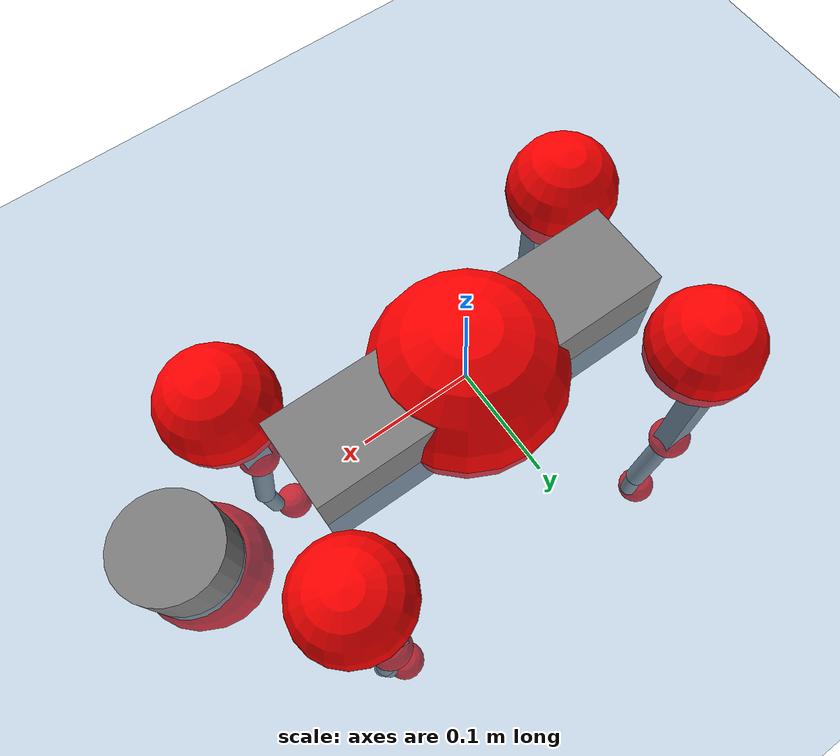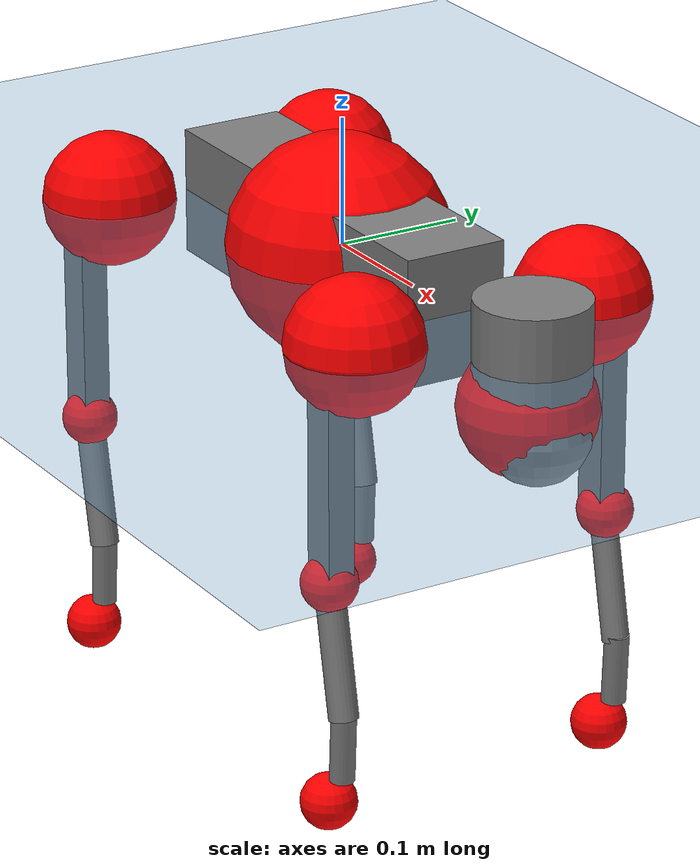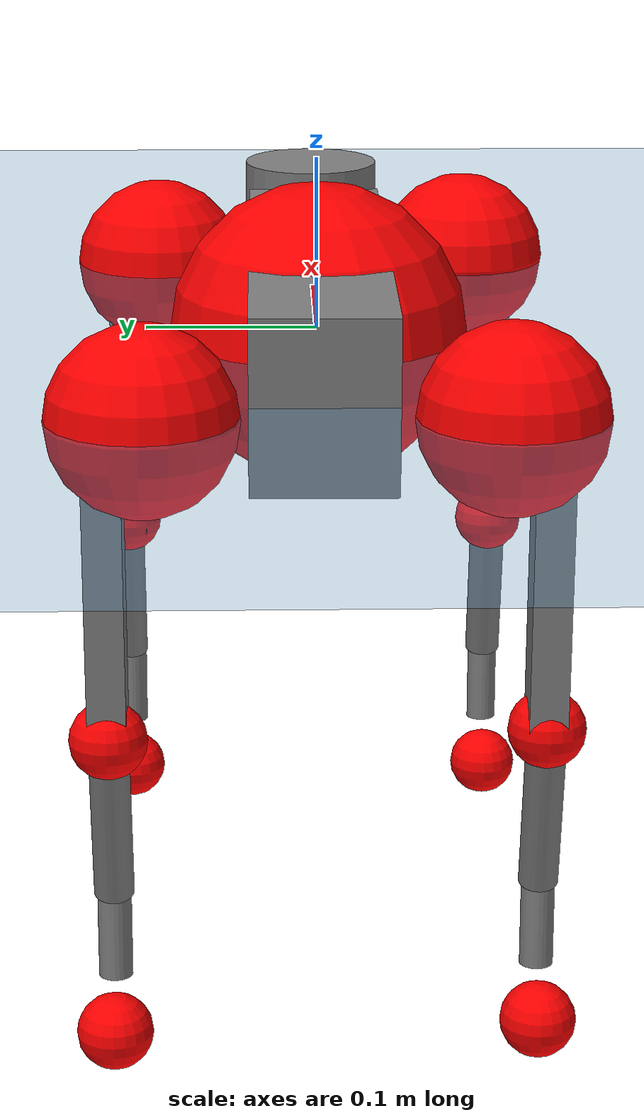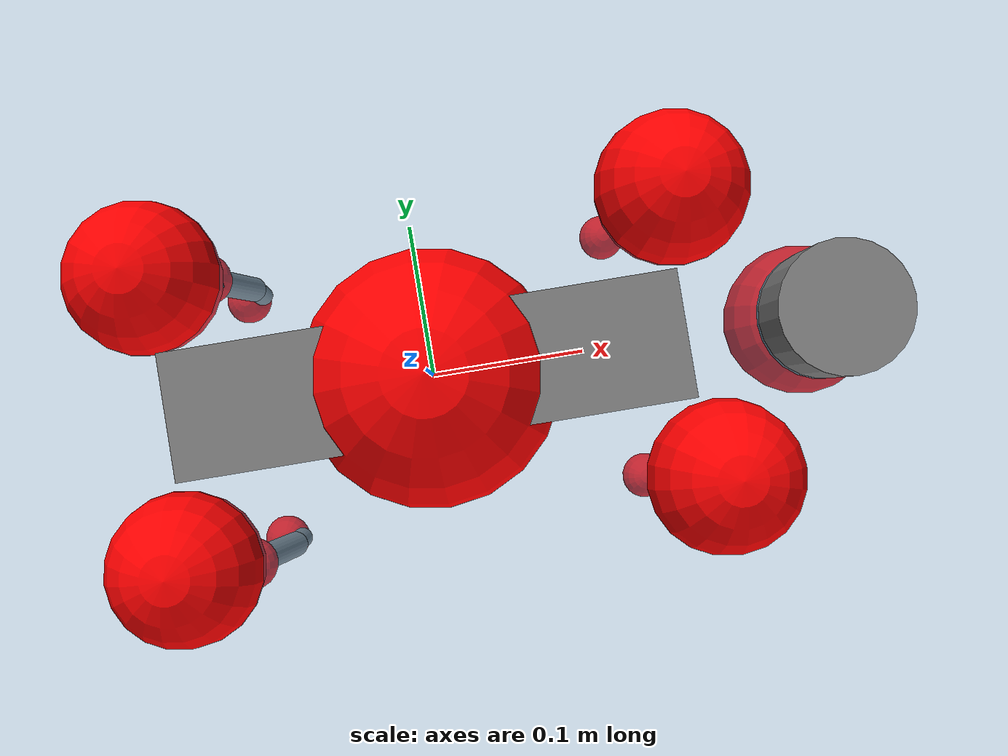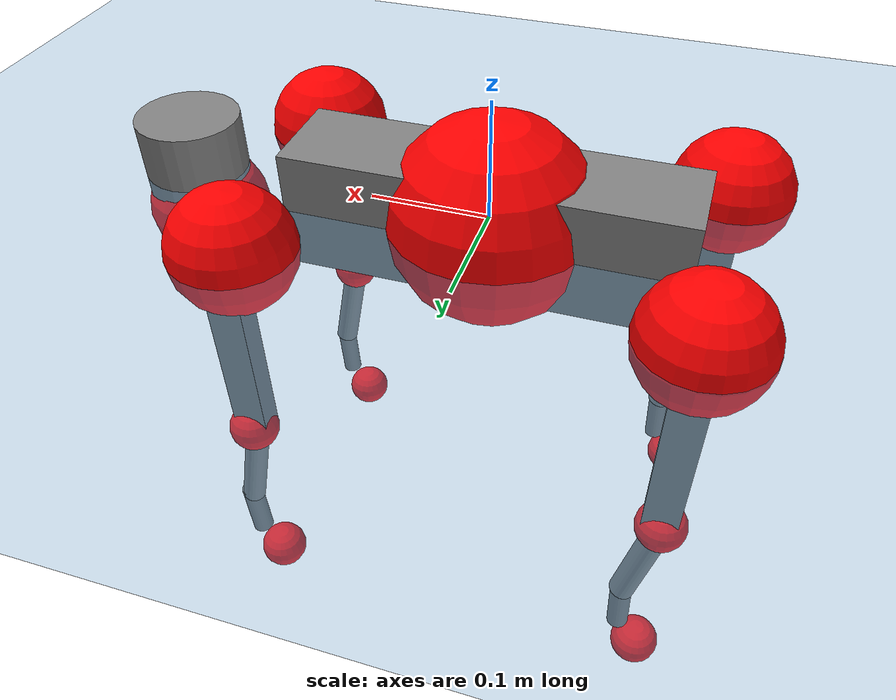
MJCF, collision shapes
<mujoco model="go2">
  <compiler angle="radian" assetdir="assets" balanceinertia="true" inertiafromgeom="false"/>

  <option timestep="0.005" density="1.2" viscosity="2e-05"/>

  <size nkey="1"/>

  <visual>
    <quality shadowsize="8192"/>
    <map shadowclip="0.5"/>
  </visual>

  <default>
    <default class="/">
      <geom contype="0" conaffinity="0" group="1" solref="-1000 -80"/>
      <site size="0.01 0.005 0.005" group="5"/>
      <general forcelimited="true" biastype="affine" gainprm="20" biasprm="0 -20 -0.5"/>
      <default class="go2">
        <joint armature="0.01" damping="0.01" frictionloss="0.2"/>
        <geom condim="1" margin="0.001"/>
        <default class="visual">
          <geom type="mesh" group="2"/>
        </default>
        <default class="collision">
          <geom group="3"/>
          <default class="foot">
            <geom size="0.022 0 0" condim="6" priority="1" friction="0.8 0.02 0.01" solimp="0.015 1 0.022"/>
          </default>
        </default>
        <default class="reward_collision_sphere">
          <geom group="5" rgba="1 0 0 1"/>
        </default>
      </default>
    </default>
  </default>

  <asset>
    <texture type="skybox" colorspace="auto" name="//unnamed_texture_0" builtin="gradient" rgb1="0.95 0.95 0.95" rgb2="0.95 0.95 0.95" width="100" height="600"/>
    <texture type="2d" colorspace="auto" name="texplane" builtin="checker" rgb1="0.345 0.575 0.748" rgb2="0.345 0.575 0.748" markrgb="1 1 1" width="512" height="512"/>
    <material name="MatPlane" class="/" texture="texplane" texuniform="true" texrepeat="2 2" specular="0.9"/>
    <material name="metal" class="/" rgba="0.9 0.95 0.95 1"/>
    <material name="black" class="/" rgba="0 0 0 1"/>
    <material name="white" class="/"/>
    <material name="gray" class="/" rgba="0.671705 0.692426 0.77427 1"/>
    <mesh name="base_0" class="/" file="base_0.obj"/>
    <mesh name="base_1" class="/" file="base_1.obj"/>
    <mesh name="base_2" class="/" file="base_2.obj"/>
    <mesh name="base_3" class="/" file="base_3.obj"/>
    <mesh name="base_4" class="/" file="base_4.obj"/>
    <mesh name="hip_0" class="/" file="hip_0.obj"/>
    <mesh name="hip_1" class="/" file="hip_1.obj"/>
    <mesh name="thigh_0" class="/" file="thigh_0.obj"/>
    <mesh name="thigh_1" class="/" file="thigh_1.obj"/>
    <mesh name="thigh_mirror_0" class="/" file="thigh_mirror_0.obj"/>
    <mesh name="thigh_mirror_1" class="/" file="thigh_mirror_1.obj"/>
    <mesh name="calf_0" class="/" file="calf_0.obj"/>
    <mesh name="calf_1" class="/" file="calf_1.obj"/>
    <mesh name="calf_mirror_0" class="/" file="calf_mirror_0.obj"/>
    <mesh name="calf_mirror_1" class="/" file="calf_mirror_1.obj"/>
    <mesh name="foot" class="/" file="foot.obj"/>
  </asset>

  <worldbody>
    <geom name="floor" class="/" size="100 100 0.125" type="plane" group="0" material="MatPlane"/>
    <light name="toplight_shadow" class="/" pos="0 0 5" dir="0.0990148 0.0990148 -0.990148" type="directional" ambient="0.04 0.04 0.04" diffuse="0.55 0.55 0.55" specular="0.12 0.12 0.12"/>
    <light name="toplight_fill" class="/" pos="0 0 5" dir="0.0990148 0.0990148 -0.990148" type="directional" castshadow="false" ambient="0.04 0.04 0.04" diffuse="0.3 0.3 0.3" specular="0.08 0.08 0.08"/>
    <body name="trunk" childclass="go2" pos="-0.00254588 -0.00103552 -0.00145423" quat="0.999999 0.00106131 -8.09427e-05 -0.000314148">
      <inertial pos="0.0179278 0.00128669 -0.00488302" quat="0.0023726 0.708041 0.00943771 0.706104" mass="4.54638" diaginertia="0.0757204 0.0416946 0.0102836"/>
      <joint name="//unnamed_joint_0" type="free" armature="0" damping="0" frictionloss="0"/>
      <geom name="//unnamed_geom_1" class="visual" material="black" mesh="base_0"/>
      <geom name="//unnamed_geom_2" class="visual" material="black" mesh="base_1"/>
      <geom name="//unnamed_geom_3" class="visual" material="black" mesh="base_2"/>
      <geom name="//unnamed_geom_4" class="visual" material="white" mesh="base_3"/>
      <geom name="//unnamed_geom_5" class="visual" material="gray" mesh="base_4"/>
      <geom name="trunk_1" class="collision" size="0.163718 0.0406903 0.0496117" type="box"/>
      <geom name="trunk_2" class="collision" size="0.043519 0.0391671" pos="0.264966 0 0.00838391" type="cylinder"/>
      <geom name="trunk_3" class="collision" size="0.0409079" pos="0.272404 0 -0.0503034"/>
      <geom name="//unnamed_geom_9" class="reward_collision_sphere" size="0.087038"/>
      <geom name="//unnamed_geom_10" class="reward_collision_sphere" size="0.0522228" pos="0.260318 0 -0.0377276"/>
      <site name="imu" pos="-0.0148496 -0.010948 0.034257" size="0.0087038"/>
      <camera name="track" pos="0 -1.68609 0" quat="0.707107 0.707107 0 0" mode="trackcom"/>
      <camera name="ego_camera" pos="0.290068 0 0.0377276" quat="-0.5 -0.5 0.5 0.5"/>
      <body name="FL_hip" pos="0.179092 0.0401045 -0.000540173" quat="0.999999 0.00067757 0.000893566 -0.000789572">
        <inertial pos="-0.00651011 0.00141403 0.000522587" quat="0.488088 0.507832 0.502772 0.501096" mass="0.462091" diaginertia="0.000633158 0.000261608 0.000209305"/>
        <joint name="FL_hip_joint" pos="0 0 0" axis="0.999938 -0.00383801 0.0104974" stiffness="0.00337531" range="-0.994253 1.05539" armature="0.00993292" damping="0" frictionloss="0.183387"/>
        <geom name="//unnamed_geom_11" class="visual" material="metal" mesh="hip_0"/>
        <geom name="//unnamed_geom_12" class="visual" material="gray" mesh="hip_1"/>
        <geom name="//unnamed_geom_13" class="collision" size="0.0400375 0.0174076" pos="0 0.0674435 0" quat="0.707107 0.707107 0 0" type="cylinder"/>
        <geom name="//unnamed_geom_14" class="reward_collision_sphere" size="0.0522228" pos="0 0.059013 0"/>
        <body name="FL_thigh" pos="-0.00176152 0.0808434 0.000120991" quat="1 9.2662e-05 -0.000317909 9.00277e-05">
          <inertial pos="-0.00425743 -0.0212637 -0.0295735" quat="0.828963 0.0835692 -0.0190037 0.552699" mass="0.770525" diaginertia="0.00408127 0.00243621 0.000359662"/>
          <joint name="FL_thigh_joint" pos="0 0 0" axis="-0.00420604 0.99999 -0.00119326" stiffness="0.00745304" range="-1.57661 3.53508" armature="0.00807554" damping="0" frictionloss="0.173542"/>
          <geom name="//unnamed_geom_15" class="visual" material="metal" mesh="thigh_0"/>
          <geom name="//unnamed_geom_16" class="visual" material="gray" mesh="thigh_1"/>
          <geom name="//unnamed_geom_17" class="collision" size="0.0926955 0.0106622 0.0147965" pos="0 0 -0.0892886" quat="0.707107 0 0.707107 0" type="box"/>
          <body name="FL_calf" pos="0.00219865 0.00226229 -0.176316" quat="1 9.40716e-05 2.4756e-05 -0.000121202">
            <inertial pos="0.00619008 -0.00204348 -0.115916" quat="0.711272 0.00268304 -0.00373421 0.702902" mass="0.16563" diaginertia="0.00107423 0.0006343 2.20798e-05"/>
            <joint name="FL_calf_joint" pos="0 0 0" axis="-0.00630101 0.999905 0.0122369" range="-2.67831 -0.892066" armature="0.00854495" damping="0.000263776" frictionloss="0.182282"/>
            <geom name="//unnamed_geom_18" class="visual" material="gray" mesh="calf_0"/>
            <geom name="//unnamed_geom_19" class="visual" material="black" mesh="calf_1"/>
            <geom name="FL_calf0" class="collision" size="0.0104446 0.0522228" pos="0.00743765 0 -0.0503034" quat="0.994493 0 -0.104807 0" type="cylinder"/>
            <geom name="//unnamed_geom_21" class="collision" size="0.00957418 0.0282873" pos="0.0185941 0 -0.124082" quat="0.999688 0 0.0249974 0" type="cylinder"/>
            <geom name="//unnamed_geom_22" class="visual" pos="0 0 -0.178577" quat="1 0 0 0" material="black" mesh="foot"/>
            <geom name="FL_foot" class="foot" size="0.0174462" pos="-0.00185941 0 -0.178577"/>
            <geom name="//unnamed_geom_24" class="reward_collision_sphere" size="0.0217595"/>
            <geom name="//unnamed_geom_25" class="reward_collision_sphere" size="0.0217595" pos="-0.00185941 0 -0.178577"/>
            <site name="FL_foot" class="foot" pos="-0.00185941 0 -0.178577" size="0.0087038"/>
          </body>
        </body>
      </body>
      <body name="FR_hip" pos="0.181966 -0.0371215 0.00278401" quat="1 3.00378e-05 3.42585e-05 5.48359e-05">
        <inertial pos="-0.00420746 -0.00391864 -6.41223e-05" quat="0.487519 0.507118 0.506937 0.498168" mass="0.463397" diaginertia="0.000621394 0.000264377 0.00020252"/>
        <joint name="FR_hip_joint" pos="0 0 0" axis="0.999998 -0.00143002 0.00124872" range="-0.995547 1.04454" armature="0.00871014" damping="0.0166764" frictionloss="0.1744"/>
        <geom name="//unnamed_geom_26" class="visual" pos="0 4.05311e-11 1.73846e-09" quat="4.63268e-05 1 0 0" material="metal" mesh="hip_0"/>
        <geom name="//unnamed_geom_27" class="visual" pos="0 6.57058e-11 -4.29988e-09" quat="4.63268e-05 1 0 0" material="gray" mesh="hip_1"/>
        <geom name="//unnamed_geom_28" class="collision" size="0.0400375 0.0174076" pos="0 -0.0674435 0" quat="0.707107 0.707107 0 0" type="cylinder"/>
        <geom name="//unnamed_geom_29" class="reward_collision_sphere" size="0.0522228" pos="0 -0.059013 0"/>
        <body name="FR_thigh" pos="0.00185208 -0.0799369 -0.00201247" quat="1 -8.83493e-05 2.35611e-05 4.45387e-05">
          <inertial pos="-0.00376898 0.0190157 -0.0299095" quat="0.551007 -0.0219654 0.095008 0.828784" mass="0.782208" diaginertia="0.00418227 0.0025676 0.000375577"/>
          <joint name="FR_thigh_joint" pos="0 0 0" axis="4.82184e-06 -1 -0.000241841" stiffness="0.00388267" range="-3.54246 1.62474" armature="0.00760741" damping="0.0108404" frictionloss="0.166587"/>
          <geom name="//unnamed_geom_30" class="visual" material="metal" mesh="thigh_mirror_0"/>
          <geom name="//unnamed_geom_31" class="visual" material="gray" mesh="thigh_mirror_1"/>
          <geom name="//unnamed_geom_32" class="collision" size="0.0926955 0.0106622 0.0147965" pos="0 0 -0.0892886" quat="0.707107 0 0.707107 0" type="box"/>
          <body name="FR_calf" pos="-0.00100311 -0.000819199 -0.178436" quat="1 5.02704e-05 4.59206e-05 7.03705e-06">
            <inertial pos="0.00486238 0.00129934 -0.116587" quat="0.701596 -0.00207976 -0.00615893 0.712545" mass="0.149783" diaginertia="0.00101722 0.000624262 2.07137e-05"/>
            <joint name="FR_calf_joint" pos="0 0 0" axis="0.000367933 -1 -0.000231066" range="0.847685 2.69103" armature="0.00990792" damping="0.0160658" frictionloss="0.174214"/>
            <geom name="//unnamed_geom_33" class="visual" material="gray" mesh="calf_mirror_0"/>
            <geom name="//unnamed_geom_34" class="visual" material="black" mesh="calf_mirror_1"/>
            <geom name="FR_calf0" class="collision" size="0.0113149 0.0522228" pos="0.00929706 0 -0.0503034" quat="0.995004 0 -0.0998334 0" type="cylinder"/>
            <geom name="//unnamed_geom_36" class="collision" size="0.00957418 0.0282873" pos="0.0185941 0 -0.124082" quat="0.999688 0 0.0249974 0" type="cylinder"/>
            <geom name="//unnamed_geom_37" class="visual" pos="0 0 -0.178577" quat="1 0 0 0" material="black" mesh="foot"/>
            <geom name="FR_foot" class="foot" size="0.0202454" pos="-0.00185941 0 -0.178577"/>
            <geom name="//unnamed_geom_39" class="reward_collision_sphere" size="0.0217595"/>
            <geom name="//unnamed_geom_40" class="reward_collision_sphere" size="0.0217595" pos="-0.00185941 0 -0.178577"/>
            <site name="FR_foot" class="foot" pos="-0.00185941 0 -0.178577" size="0.0087038"/>
          </body>
        </body>
      </body>
      <body name="RL_hip" pos="-0.178708 0.037533 -0.00143942" quat="1 -3.35578e-06 -2.37043e-05 -2.21856e-05">
        <inertial pos="0.00527661 0.00280148 -0.0020604" quat="0.502853 0.496477 0.500807 0.499842" mass="0.467464" diaginertia="0.000642622 0.000249038 0.000199995"/>
        <joint name="RL_hip_joint" pos="0 0 0" axis="-0.999831 0.0183065 0.00145811" range="-1.00034 1.10135" armature="0.00876275" damping="0" frictionloss="0.197819"/>
        <geom name="//unnamed_geom_41" class="visual" pos="-7.95503e-10 0 -1.55937e-07" quat="4.63268e-05 0 1 0" material="metal" mesh="hip_0"/>
        <geom name="//unnamed_geom_42" class="visual" pos="-1.28961e-09 0 -1.38294e-07" quat="4.63268e-05 0 1 0" material="gray" mesh="hip_1"/>
        <geom name="//unnamed_geom_43" class="collision" size="0.0400375 0.0174076" pos="0 0.0674435 0" quat="0.707107 0.707107 0 0" type="cylinder"/>
        <geom name="//unnamed_geom_44" class="reward_collision_sphere" size="0.0522228" pos="0 0.059013 0"/>
        <body name="RL_thigh" pos="0.000134588 0.0807191 0.000573382" quat="1 -5.85177e-07 -4.03606e-06 5.41877e-05">
          <inertial pos="-0.00623455 -0.0194666 -0.0296969" quat="0.826306 0.094005 -0.0292245 0.554551" mass="0.776783" diaginertia="0.00403485 0.00252546 0.00035496"/>
          <joint name="RL_thigh_joint" pos="0 0 0" axis="-0.00385328 0.999829 0.0181119" stiffness="0.000461619" range="-0.577138 4.55681" armature="0.00883515" damping="0" frictionloss="0.169805"/>
          <geom name="//unnamed_geom_45" class="visual" material="metal" mesh="thigh_0"/>
          <geom name="//unnamed_geom_46" class="visual" material="gray" mesh="thigh_1"/>
          <geom name="//unnamed_geom_47" class="collision" size="0.0926955 0.0106622 0.0147965" pos="0 0 -0.0892886" quat="0.707107 0 0.707107 0" type="box"/>
          <body name="RL_calf" pos="-0.00170251 -7.36424e-05 -0.181776" quat="1 -2.43856e-05 1.97456e-05 -9.56488e-06">
            <inertial pos="0.0075519 -0.00257086 -0.116229" quat="0.702848 0.00585616 -0.0115904 0.711222" mass="0.153626" diaginertia="0.00103758 0.000626927 2.19454e-05"/>
            <joint name="RL_calf_joint" pos="0 0 0" axis="0.00270657 0.999987 0.00428841" range="-2.72665 -0.834479" armature="0.00840636" damping="0.00204607" frictionloss="0.191246"/>
            <geom name="//unnamed_geom_48" class="visual" material="gray" mesh="calf_0"/>
            <geom name="//unnamed_geom_49" class="visual" material="black" mesh="calf_1"/>
            <geom name="RL_calf0" class="collision" size="0.0113149 0.0522228" pos="0.00929706 0 -0.0503034" quat="0.995004 0 -0.0998334 0" type="cylinder"/>
            <geom name="//unnamed_geom_51" class="collision" size="0.00957418 0.0282873" pos="0.0185941 0 -0.124082" quat="0.999688 0 0.0249974 0" type="cylinder"/>
            <geom name="//unnamed_geom_52" class="visual" pos="0 0 -0.178577" quat="1 0 0 0" material="black" mesh="foot"/>
            <geom name="RL_foot" class="foot" size="0.0183398" pos="-0.00185941 0 -0.178577"/>
            <geom name="//unnamed_geom_54" class="reward_collision_sphere" size="0.0217595"/>
            <geom name="//unnamed_geom_55" class="reward_collision_sphere" size="0.0217595" pos="-0.00185941 0 -0.178577"/>
            <site name="RL_foot" class="foot" pos="-0.00185941 0 -0.178577" size="0.0087038"/>
          </body>
        </body>
      </body>
      <body name="RR_hip" pos="-0.179773 -0.0401286 -0.000515244" quat="1 0.000142701 0.000134302 0.000428789">
        <inertial pos="0.00535682 0.00129174 -0.00281095" quat="0.499206 0.496992 0.49826 0.505498" mass="0.438757" diaginertia="0.000603714 0.0002494 0.000193408"/>
        <joint name="RR_hip_joint" pos="0 0 0" axis="-0.99998 -0.00259594 -0.00571171" stiffness="0.00238754" range="-1.03541 0.992287" armature="0.00799698" damping="0" frictionloss="0.175853"/>
        <geom name="//unnamed_geom_56" class="visual" pos="7.92502e-10 4.05311e-11 -1.57675e-07" quat="2.14617e-09 4.63268e-05 4.63268e-05 -1" material="metal" mesh="hip_0"/>
        <geom name="//unnamed_geom_57" class="visual" pos="1.29703e-09 6.57058e-11 -1.33994e-07" quat="2.14617e-09 4.63268e-05 4.63268e-05 -1" material="gray" mesh="hip_1"/>
        <geom name="//unnamed_geom_58" class="collision" size="0.0400375 0.0174076" pos="0 -0.0674435 0" quat="0.707107 0.707107 0 0" type="cylinder"/>
        <geom name="//unnamed_geom_59" class="reward_collision_sphere" size="0.0522228" pos="0 -0.059013 0"/>
        <body name="RR_thigh" pos="-0.00113981 -0.0809454 0.0018742" quat="1 -9.81122e-05 3.51747e-06 -7.28001e-05">
          <inertial pos="-0.00546483 0.0215535 -0.0275387" quat="0.551432 -0.0200722 0.084344 0.829702" mass="0.707834" diaginertia="0.00404303 0.00242152 0.000363522"/>
          <joint name="RR_thigh_joint" pos="0 0 0" axis="-0.000873139 -0.999997 -0.00237869" stiffness="0.00992368" range="-4.58921 0.578387" armature="0.00901547" damping="0.0138437" frictionloss="0.149861"/>
          <geom name="//unnamed_geom_60" class="visual" material="metal" mesh="thigh_mirror_0"/>
          <geom name="//unnamed_geom_61" class="visual" material="gray" mesh="thigh_mirror_1"/>
          <geom name="//unnamed_geom_62" class="collision" size="0.0926955 0.0106622 0.0147965" pos="0 0 -0.0892886" quat="0.707107 0 0.707107 0" type="box"/>
          <body name="RR_calf" pos="0.00281435 -0.000847383 -0.179724" quat="1 0.000284957 0.00023193 -0.000460103">
            <inertial pos="0.00578967 0.000622733 -0.118393" quat="0.706119 -0.00391929 -0.00224515 0.708079" mass="0.149273" diaginertia="0.00101616 0.000608696 2.13142e-05"/>
            <joint name="RR_calf_joint" pos="0 0 0" axis="-0.000638297 -0.999999 -0.00148311" range="0.830167 2.76294" armature="0.00826948" damping="0.00630835" frictionloss="0.169154"/>
            <geom name="//unnamed_geom_63" class="visual" material="gray" mesh="calf_mirror_0"/>
            <geom name="//unnamed_geom_64" class="visual" material="black" mesh="calf_mirror_1"/>
            <geom name="RR_calf0" class="collision" size="0.0113149 0.0522228" pos="0.00929706 0 -0.0503034" quat="0.995004 0 -0.0998334 0" type="cylinder"/>
            <geom name="//unnamed_geom_66" class="collision" size="0.00957418 0.0282873" pos="0.0185941 0 -0.124082" quat="0.999688 0 0.0249974 0" type="cylinder"/>
            <geom name="//unnamed_geom_67" class="visual" pos="0 0 -0.178577" quat="1 0 0 0" material="black" mesh="foot"/>
            <geom name="RR_foot" class="foot" size="0.0205959" pos="-0.00185941 0 -0.178577"/>
            <geom name="//unnamed_geom_69" class="reward_collision_sphere" size="0.0217595"/>
            <geom name="//unnamed_geom_70" class="reward_collision_sphere" size="0.0217595" pos="-0.00185941 0 -0.178577"/>
            <site name="RR_foot" class="foot" pos="-0.00185941 0 -0.178577" size="0.0087038"/>
          </body>
        </body>
      </body>
    </body>
  </worldbody>

  <contact>
    <pair class="/" geom1="floor" geom2="FL_foot" name="//unnamed_contact_0"/>
    <pair class="/" geom1="floor" geom2="FR_foot" name="//unnamed_contact_1"/>
    <pair class="/" geom1="floor" geom2="RL_foot" name="//unnamed_contact_2"/>
    <pair class="/" geom1="floor" geom2="RR_foot" name="//unnamed_contact_3"/>
  </contact>

  <actuator>
    <general name="FL_hip" class="/" joint="FL_hip_joint" forcerange="-19.7672 19.7672" gainprm="17.5674" biasprm="0 -17.5674 -0.467433"/>
    <general name="FL_thigh" class="/" joint="FL_thigh_joint" forcerange="-22.7908 22.7908" gainprm="17.5674" biasprm="0 -17.5674 -0.467433"/>
    <general name="FL_calf" class="/" joint="FL_calf_joint" forcerange="-35.5072 35.5072" gainprm="17.5674" biasprm="0 -17.5674 -0.467433"/>
    <general name="FR_hip" class="/" joint="FR_hip_joint" forcerange="-20.0866 20.0866" gainprm="17.5674" biasprm="0 -17.5674 -0.467433"/>
    <general name="FR_thigh" class="/" joint="FR_thigh_joint" forcerange="-22.1075 22.1075" gainprm="17.5674" biasprm="0 -17.5674 -0.467433"/>
    <general name="FR_calf" class="/" joint="FR_calf_joint" forcerange="-41.6951 41.6951" gainprm="17.5674" biasprm="0 -17.5674 -0.467433"/>
    <general name="RL_hip" class="/" joint="RL_hip_joint" forcerange="-22.5808 22.5808" gainprm="17.5674" biasprm="0 -17.5674 -0.467433"/>
    <general name="RL_thigh" class="/" joint="RL_thigh_joint" forcerange="-21.7312 21.7312" gainprm="17.5674" biasprm="0 -17.5674 -0.467433"/>
    <general name="RL_calf" class="/" joint="RL_calf_joint" forcerange="-39.6673 39.6673" gainprm="17.5674" biasprm="0 -17.5674 -0.467433"/>
    <general name="RR_hip" class="/" joint="RR_hip_joint" forcerange="-20.4582 20.4582" gainprm="17.5674" biasprm="0 -17.5674 -0.467433"/>
    <general name="RR_thigh" class="/" joint="RR_thigh_joint" forcerange="-18.8891 18.8891" gainprm="17.5674" biasprm="0 -17.5674 -0.467433"/>
    <general name="RR_calf" class="/" joint="RR_calf_joint" forcerange="-35.4146 35.4146" gainprm="17.5674" biasprm="0 -17.5674 -0.467433"/>
  </actuator>

  <sensor>
    <gyro site="imu" name="imu_angular_velocity"/>
    <velocimeter site="imu" name="imu_linear_velocity"/>
    <framelinvel objtype="site" objname="FL_foot" name="FL_foot_global_linear_velocity"/>
    <framelinvel objtype="site" objname="FR_foot" name="FR_foot_global_linear_velocity"/>
    <framelinvel objtype="site" objname="RL_foot" name="RL_foot_global_linear_velocity"/>
    <framelinvel objtype="site" objname="RR_foot" name="RR_foot_global_linear_velocity"/>
  </sensor>

  <keyframe>
    <key name="home" qpos="0 0 0.325 1 0 0 0 0.1 0.8 -1.5 -0.1 -0.8 1.5 -0.1 0.8 -1.5 0.1 -0.8 1.5"/>
  </keyframe>
</mujoco>
